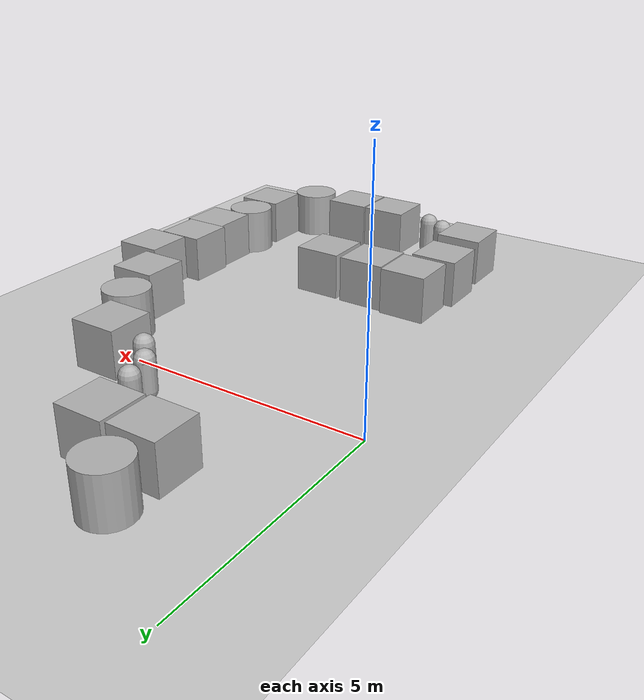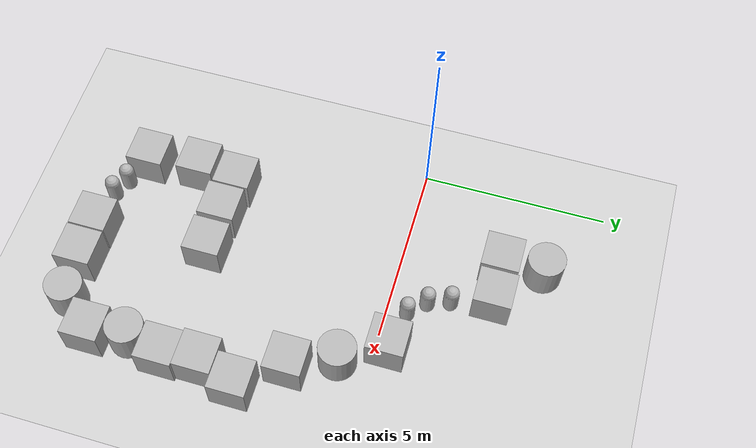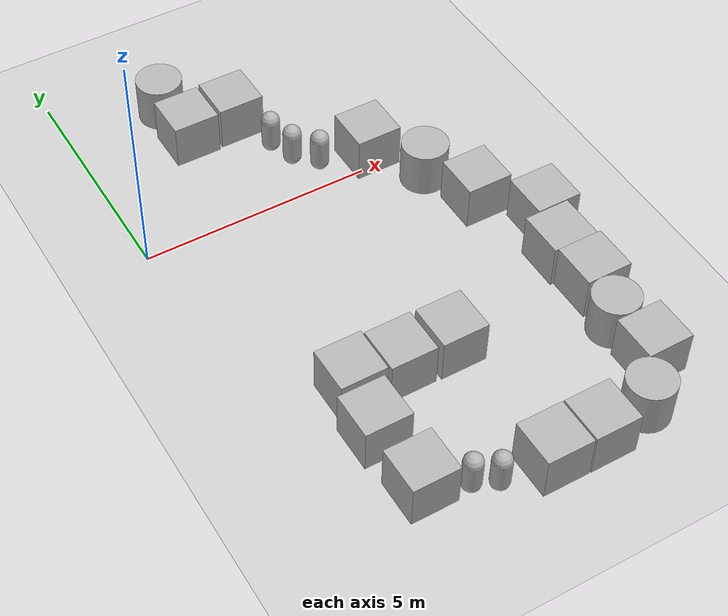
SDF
<sdf version='1.10'>
  <world name='empty'>
    <physics name='1ms' type='ignored'>
      <max_step_size>0.001</max_step_size>
      <real_time_factor>1</real_time_factor>
      <real_time_update_rate>1000</real_time_update_rate>
    </physics>
    <plugin name='gz::sim::systems::Physics' filename='gz-sim-physics-system'/>
    <plugin name='gz::sim::systems::UserCommands' filename='gz-sim-user-commands-system'/>
    <plugin name='gz::sim::systems::SceneBroadcaster' filename='gz-sim-scene-broadcaster-system'/>
    <plugin name='gz::sim::systems::Sensors' filename='gz-sim-sensors-system'>
      <render_engine>ogre2</render_engine>
    </plugin>
    <plugin name='gz::sim::systems::Contact' filename='gz-sim-contact-system'/>
    <gravity>0 0 -9.8000000000000007</gravity>
    <magnetic_field>5.5644999999999998e-06 2.2875799999999999e-05 -4.2388400000000002e-05</magnetic_field>
    <atmosphere type='adiabatic'/>
    <scene>
      <ambient>0.400000006 0.400000006 0.400000006 1</ambient>
      <background>0.699999988 0.699999988 0.699999988 1</background>
      <shadows>true</shadows>
    </scene>
    <model name='ground_plane'>
      <static>true</static>
      <link name='link'>
        <collision name='collision'>
          <geometry>
            <plane>
              <normal>0 0 1</normal>
              <size>100 100</size>
            </plane>
          </geometry>
          <surface>
            <friction>
              <ode/>
            </friction>
            <bounce/>
            <contact/>
          </surface>
        </collision>
        <visual name='visual'>
          <geometry>
            <plane>
              <normal>0 0 1</normal>
              <size>100 100</size>
            </plane>
          </geometry>
          <material>
            <ambient>0.800000012 0.800000012 0.800000012 1</ambient>
            <diffuse>0.800000012 0.800000012 0.800000012 1</diffuse>
            <specular>0.800000012 0.800000012 0.800000012 1</specular>
          </material>
        </visual>
        <pose>0 0 0 0 0 0</pose>
        <inertial>
          <pose>0 0 0 0 0 0</pose>
          <mass>1</mass>
          <inertia>
            <ixx>1</ixx>
            <ixy>0</ixy>
            <ixz>0</ixz>
            <iyy>1</iyy>
            <iyz>0</iyz>
            <izz>1</izz>
          </inertia>
        </inertial>
        <enable_wind>false</enable_wind>
      </link>
      <pose>0 0 0 0 0 0</pose>
      <self_collide>false</self_collide>
    </model>
    <model name='box'>
      <pose>1.8029219467110664 -4.9402323017846799 0.49999999970892495 1.9456243348768095e-21 -2.0287702973480091e-21 -7.5527752180039009e-22</pose>
      <link name='box_link'>
        <inertial>
          <inertia>
            <ixx>0.16666</ixx>
            <ixy>0</ixy>
            <ixz>0</ixz>
            <iyy>0.16666</iyy>
            <iyz>0</iyz>
            <izz>0.16666</izz>
          </inertia>
          <mass>1</mass>
          <pose>0 0 0 0 0 0</pose>
        </inertial>
        <collision name='box_collision'>
          <geometry>
            <box>
              <size>1 1 1</size>
            </box>
          </geometry>
          <surface>
            <friction>
              <ode/>
            </friction>
            <bounce/>
            <contact/>
          </surface>
        </collision>
        <visual name='box_visual'>
          <geometry>
            <box>
              <size>1 1 1</size>
            </box>
          </geometry>
          <material>
            <ambient>0.300000012 0.300000012 0.300000012 1</ambient>
            <diffuse>0.699999988 0.699999988 0.699999988 1</diffuse>
            <specular>1 1 1 1</specular>
          </material>
        </visual>
        <pose>0 0 0 0 0 0</pose>
        <enable_wind>false</enable_wind>
      </link>
      <static>false</static>
      <self_collide>false</self_collide>
    </model>
    <model name='cylinder'>
      <pose>2.1278173043812618 3.7029515542140965 0.49999943772199973 2.1066760115092856e-20 1.565504799259254e-20 -8.2773158789794774e-21</pose>
      <link name='cylinder_link'>
        <inertial>
          <inertia>
            <ixx>0.14580000000000001</ixx>
            <ixy>0</ixy>
            <ixz>0</ixz>
            <iyy>0.14580000000000001</iyy>
            <iyz>0</iyz>
            <izz>0.125</izz>
          </inertia>
          <mass>1</mass>
          <pose>0 0 0 0 0 0</pose>
        </inertial>
        <collision name='cylinder_collision'>
          <geometry>
            <cylinder>
              <radius>0.5</radius>
              <length>1</length>
            </cylinder>
          </geometry>
          <surface>
            <friction>
              <ode/>
            </friction>
            <bounce/>
            <contact/>
          </surface>
        </collision>
        <visual name='cylinder_visual'>
          <geometry>
            <cylinder>
              <radius>0.5</radius>
              <length>1</length>
            </cylinder>
          </geometry>
          <material>
            <ambient>0.300000012 0.300000012 0.300000012 1</ambient>
            <diffuse>0.699999988 0.699999988 0.699999988 1</diffuse>
            <specular>1 1 1 1</specular>
          </material>
        </visual>
        <pose>0 0 0 0 0 0</pose>
        <enable_wind>false</enable_wind>
      </link>
      <static>false</static>
      <self_collide>false</self_collide>
    </model>
    <model name='box_0'>
      <pose>3.2862999748237596 2.6066418007786942 0.49999999980497606 1.0048033485058014e-21 -2.4640853465547739e-21 -3.9210766489770922e-22</pose>
      <link name='box_link'>
        <inertial>
          <inertia>
            <ixx>0.16666</ixx>
            <ixy>0</ixy>
            <ixz>0</ixz>
            <iyy>0.16666</iyy>
            <iyz>0</iyz>
            <izz>0.16666</izz>
          </inertia>
          <mass>1</mass>
          <pose>0 0 0 0 0 0</pose>
        </inertial>
        <collision name='box_collision'>
          <geometry>
            <box>
              <size>1 1 1</size>
            </box>
          </geometry>
          <surface>
            <friction>
              <ode/>
            </friction>
            <bounce/>
            <contact/>
          </surface>
        </collision>
        <visual name='box_visual'>
          <geometry>
            <box>
              <size>1 1 1</size>
            </box>
          </geometry>
          <material>
            <ambient>0.300000012 0.300000012 0.300000012 1</ambient>
            <diffuse>0.699999988 0.699999988 0.699999988 1</diffuse>
            <specular>1 1 1 1</specular>
          </material>
        </visual>
        <pose>0 0 0 0 0 0</pose>
        <enable_wind>false</enable_wind>
      </link>
      <static>false</static>
      <self_collide>false</self_collide>
    </model>
    <model name='box_2'>
      <pose>5.3144298404714849 0.32666179257281813 0.49999999980497606 1.0048033485058014e-21 -2.4640853465547739e-21 -3.9210766489770922e-22</pose>
      <link name='box_link'>
        <inertial>
          <inertia>
            <ixx>0.16666</ixx>
            <ixy>0</ixy>
            <ixz>0</ixz>
            <iyy>0.16666</iyy>
            <iyz>0</iyz>
            <izz>0.16666</izz>
          </inertia>
          <mass>1</mass>
          <pose>0 0 0 0 0 0</pose>
        </inertial>
        <collision name='box_collision'>
          <geometry>
            <box>
              <size>1 1 1</size>
            </box>
          </geometry>
          <surface>
            <friction>
              <ode/>
            </friction>
            <bounce/>
            <contact/>
          </surface>
        </collision>
        <visual name='box_visual'>
          <geometry>
            <box>
              <size>1 1 1</size>
            </box>
          </geometry>
          <material>
            <ambient>0.300000012 0.300000012 0.300000012 1</ambient>
            <diffuse>0.699999988 0.699999988 0.699999988 1</diffuse>
            <specular>1 1 1 1</specular>
          </material>
        </visual>
        <pose>0 0 0 0 0 0</pose>
        <enable_wind>false</enable_wind>
      </link>
      <static>false</static>
      <self_collide>false</self_collide>
    </model>
    <model name='box_3'>
      <pose>2.837014502640967 -5.0088500809708263 0.49999999980497606 1.0048033485058014e-21 -2.4640853465547739e-21 -3.9210766489770922e-22</pose>
      <link name='box_link'>
        <inertial>
          <inertia>
            <ixx>0.16666</ixx>
            <ixy>0</ixy>
            <ixz>0</ixz>
            <iyy>0.16666</iyy>
            <iyz>0</iyz>
            <izz>0.16666</izz>
          </inertia>
          <mass>1</mass>
          <pose>0 0 0 0 0 0</pose>
        </inertial>
        <collision name='box_collision'>
          <geometry>
            <box>
              <size>1 1 1</size>
            </box>
          </geometry>
          <surface>
            <friction>
              <ode/>
            </friction>
            <bounce/>
            <contact/>
          </surface>
        </collision>
        <visual name='box_visual'>
          <geometry>
            <box>
              <size>1 1 1</size>
            </box>
          </geometry>
          <material>
            <ambient>0.300000012 0.300000012 0.300000012 1</ambient>
            <diffuse>0.699999988 0.699999988 0.699999988 1</diffuse>
            <specular>1 1 1 1</specular>
          </material>
        </visual>
        <pose>0 0 0 0 0 0</pose>
        <enable_wind>false</enable_wind>
      </link>
      <static>false</static>
      <self_collide>false</self_collide>
    </model>
    <model name='box_4'>
      <pose>3.9474809183531687 -5.0258722953265274 0.49999998529462536 3.7104125958135577e-09 -2.3067699219829278e-08 -3.0332183811339351e-07</pose>
      <link name='box_link'>
        <inertial>
          <inertia>
            <ixx>0.16666</ixx>
            <ixy>0</ixy>
            <ixz>0</ixz>
            <iyy>0.16666</iyy>
            <iyz>0</iyz>
            <izz>0.16666</izz>
          </inertia>
          <mass>1</mass>
          <pose>0 0 0 0 0 0</pose>
        </inertial>
        <collision name='box_collision'>
          <geometry>
            <box>
              <size>1 1 1</size>
            </box>
          </geometry>
          <surface>
            <friction>
              <ode/>
            </friction>
            <bounce/>
            <contact/>
          </surface>
        </collision>
        <visual name='box_visual'>
          <geometry>
            <box>
              <size>1 1 1</size>
            </box>
          </geometry>
          <material>
            <ambient>0.300000012 0.300000012 0.300000012 1</ambient>
            <diffuse>0.699999988 0.699999988 0.699999988 1</diffuse>
            <specular>1 1 1 1</specular>
          </material>
        </visual>
        <pose>0 0 0 0 0 0</pose>
        <enable_wind>false</enable_wind>
      </link>
      <static>false</static>
      <self_collide>false</self_collide>
    </model>
    <model name='box_7'>
      <pose>6.5231540357217348 -1.967623446308266 0.49999999980497606 1.0048033485058014e-21 -2.4640853465547739e-21 -3.9210766489770922e-22</pose>
      <link name='box_link'>
        <inertial>
          <inertia>
            <ixx>0.16666</ixx>
            <ixy>0</ixy>
            <ixz>0</ixz>
            <iyy>0.16666</iyy>
            <iyz>0</iyz>
            <izz>0.16666</izz>
          </inertia>
          <mass>1</mass>
          <pose>0 0 0 0 0 0</pose>
        </inertial>
        <collision name='box_collision'>
          <geometry>
            <box>
              <size>1 1 1</size>
            </box>
          </geometry>
          <surface>
            <friction>
              <ode/>
            </friction>
            <bounce/>
            <contact/>
          </surface>
        </collision>
        <visual name='box_visual'>
          <geometry>
            <box>
              <size>1 1 1</size>
            </box>
          </geometry>
          <material>
            <ambient>0.300000012 0.300000012 0.300000012 1</ambient>
            <diffuse>0.699999988 0.699999988 0.699999988 1</diffuse>
            <specular>1 1 1 1</specular>
          </material>
        </visual>
        <pose>0 0 0 0 0 0</pose>
        <enable_wind>false</enable_wind>
      </link>
      <static>false</static>
      <self_collide>false</self_collide>
    </model>
    <model name='box_8'>
      <pose>7.4158802936807593 -3.0975309045415642 0.49999999980497606 1.0048033485058014e-21 -2.4640853465547739e-21 -3.9210766489770922e-22</pose>
      <link name='box_link'>
        <inertial>
          <inertia>
            <ixx>0.16666</ixx>
            <ixy>0</ixy>
            <ixz>0</ixz>
            <iyy>0.16666</iyy>
            <iyz>0</iyz>
            <izz>0.16666</izz>
          </inertia>
          <mass>1</mass>
          <pose>0 0 0 0 0 0</pose>
        </inertial>
        <collision name='box_collision'>
          <geometry>
            <box>
              <size>1 1 1</size>
            </box>
          </geometry>
          <surface>
            <friction>
              <ode/>
            </friction>
            <bounce/>
            <contact/>
          </surface>
        </collision>
        <visual name='box_visual'>
          <geometry>
            <box>
              <size>1 1 1</size>
            </box>
          </geometry>
          <material>
            <ambient>0.300000012 0.300000012 0.300000012 1</ambient>
            <diffuse>0.699999988 0.699999988 0.699999988 1</diffuse>
            <specular>1 1 1 1</specular>
          </material>
        </visual>
        <pose>0 0 0 0 0 0</pose>
        <enable_wind>false</enable_wind>
      </link>
      <static>false</static>
      <self_collide>false</self_collide>
    </model>
    <model name='box_9'>
      <pose>7.083578917499171 -4.1148498478956697 0.4999999901998512 -5.0054462870855815e-09 6.7667792938227688e-13 -1.6027558188792147e-06</pose>
      <link name='box_link'>
        <inertial>
          <inertia>
            <ixx>0.16666</ixx>
            <ixy>0</ixy>
            <ixz>0</ixz>
            <iyy>0.16666</iyy>
            <iyz>0</iyz>
            <izz>0.16666</izz>
          </inertia>
          <mass>1</mass>
          <pose>0 0 0 0 0 0</pose>
        </inertial>
        <collision name='box_collision'>
          <geometry>
            <box>
              <size>1 1 1</size>
            </box>
          </geometry>
          <surface>
            <friction>
              <ode/>
            </friction>
            <bounce/>
            <contact/>
          </surface>
        </collision>
        <visual name='box_visual'>
          <geometry>
            <box>
              <size>1 1 1</size>
            </box>
          </geometry>
          <material>
            <ambient>0.300000012 0.300000012 0.300000012 1</ambient>
            <diffuse>0.699999988 0.699999988 0.699999988 1</diffuse>
            <specular>1 1 1 1</specular>
          </material>
        </visual>
        <pose>0 0 0 0 0 0</pose>
        <enable_wind>false</enable_wind>
      </link>
      <static>false</static>
      <self_collide>false</self_collide>
    </model>
    <model name='box_10'>
      <pose>7.1576687280783151 -5.1148497796605188 0.49999999019985342 -5.0212382141826541e-09 6.6009256246893956e-13 -1.5803645043460538e-06</pose>
      <link name='box_link'>
        <inertial>
          <inertia>
            <ixx>0.16666</ixx>
            <ixy>0</ixy>
            <ixz>0</ixz>
            <iyy>0.16666</iyy>
            <iyz>0</iyz>
            <izz>0.16666</izz>
          </inertia>
          <mass>1</mass>
          <pose>0 0 0 0 0 0</pose>
        </inertial>
        <collision name='box_collision'>
          <geometry>
            <box>
              <size>1 1 1</size>
            </box>
          </geometry>
          <surface>
            <friction>
              <ode/>
            </friction>
            <bounce/>
            <contact/>
          </surface>
        </collision>
        <visual name='box_visual'>
          <geometry>
            <box>
              <size>1 1 1</size>
            </box>
          </geometry>
          <material>
            <ambient>0.300000012 0.300000012 0.300000012 1</ambient>
            <diffuse>0.699999988 0.699999988 0.699999988 1</diffuse>
            <specular>1 1 1 1</specular>
          </material>
        </visual>
        <pose>0 0 0 0 0 0</pose>
        <enable_wind>false</enable_wind>
      </link>
      <static>false</static>
      <self_collide>false</self_collide>
    </model>
    <model name='box_12'>
      <pose>7.0693667116471071 -7.120849661032981 0.49999902609787999 3.1407788921535716e-09 1.2773885058184568e-06 0.0023711304066143051</pose>
      <link name='box_link'>
        <inertial>
          <inertia>
            <ixx>0.16666</ixx>
            <ixy>0</ixy>
            <ixz>0</ixz>
            <iyy>0.16666</iyy>
            <iyz>0</iyz>
            <izz>0.16666</izz>
          </inertia>
          <mass>1</mass>
          <pose>0 0 0 0 0 0</pose>
        </inertial>
        <collision name='box_collision'>
          <geometry>
            <box>
              <size>1 1 1</size>
            </box>
          </geometry>
          <surface>
            <friction>
              <ode/>
            </friction>
            <bounce/>
            <contact/>
          </surface>
        </collision>
        <visual name='box_visual'>
          <geometry>
            <box>
              <size>1 1 1</size>
            </box>
          </geometry>
          <material>
            <ambient>0.300000012 0.300000012 0.300000012 1</ambient>
            <diffuse>0.699999988 0.699999988 0.699999988 1</diffuse>
            <specular>1 1 1 1</specular>
          </material>
        </visual>
        <pose>0 0 0 0 0 0</pose>
        <enable_wind>false</enable_wind>
      </link>
      <static>false</static>
      <self_collide>false</self_collide>
    </model>
    <model name='box_14'>
      <pose>5.1242039913273256 -8.1461779064023929 0.49999999019961472 6.999815750043932e-13 -4.3492220174556304e-09 -2.2626298584421222e-06</pose>
      <link name='box_link'>
        <inertial>
          <inertia>
            <ixx>0.16666</ixx>
            <ixy>0</ixy>
            <ixz>0</ixz>
            <iyy>0.16666</iyy>
            <iyz>0</iyz>
            <izz>0.16666</izz>
          </inertia>
          <mass>1</mass>
          <pose>0 0 0 0 0 0</pose>
        </inertial>
        <collision name='box_collision'>
          <geometry>
            <box>
              <size>1 1 1</size>
            </box>
          </geometry>
          <surface>
            <friction>
              <ode/>
            </friction>
            <bounce/>
            <contact/>
          </surface>
        </collision>
        <visual name='box_visual'>
          <geometry>
            <box>
              <size>1 1 1</size>
            </box>
          </geometry>
          <material>
            <ambient>0.300000012 0.300000012 0.300000012 1</ambient>
            <diffuse>0.699999988 0.699999988 0.699999988 1</diffuse>
            <specular>1 1 1 1</specular>
          </material>
        </visual>
        <pose>0 0 0 0 0 0</pose>
        <enable_wind>false</enable_wind>
      </link>
      <static>false</static>
      <self_collide>false</self_collide>
    </model>
    <model name='box_15'>
      <pose>4.0904389897101998 -8.1420347813360383 0.49999999980497606 1.0048033485058014e-21 -2.4640853465547739e-21 -3.9210766489770922e-22</pose>
      <link name='box_link'>
        <inertial>
          <inertia>
            <ixx>0.16666</ixx>
            <ixy>0</ixy>
            <ixz>0</ixz>
            <iyy>0.16666</iyy>
            <iyz>0</iyz>
            <izz>0.16666</izz>
          </inertia>
          <mass>1</mass>
          <pose>0 0 0 0 0 0</pose>
        </inertial>
        <collision name='box_collision'>
          <geometry>
            <box>
              <size>1 1 1</size>
            </box>
          </geometry>
          <surface>
            <friction>
              <ode/>
            </friction>
            <bounce/>
            <contact/>
          </surface>
        </collision>
        <visual name='box_visual'>
          <geometry>
            <box>
              <size>1 1 1</size>
            </box>
          </geometry>
          <material>
            <ambient>0.300000012 0.300000012 0.300000012 1</ambient>
            <diffuse>0.699999988 0.699999988 0.699999988 1</diffuse>
            <specular>1 1 1 1</specular>
          </material>
        </visual>
        <pose>0 0 0 0 0 0</pose>
        <enable_wind>false</enable_wind>
      </link>
      <static>false</static>
      <self_collide>false</self_collide>
    </model>
    <model name='box_16'>
      <pose>2.2159928085678793 2.5692487041955907 0.49999999980497606 1.0048033485058014e-21 -2.4640853465547739e-21 -3.9210766489770922e-22</pose>
      <link name='box_link'>
        <inertial>
          <inertia>
            <ixx>0.16666</ixx>
            <ixy>0</ixy>
            <ixz>0</ixz>
            <iyy>0.16666</iyy>
            <iyz>0</iyz>
            <izz>0.16666</izz>
          </inertia>
          <mass>1</mass>
          <pose>0 0 0 0 0 0</pose>
        </inertial>
        <collision name='box_collision'>
          <geometry>
            <box>
              <size>1 1 1</size>
            </box>
          </geometry>
          <surface>
            <friction>
              <ode/>
            </friction>
            <bounce/>
            <contact/>
          </surface>
        </collision>
        <visual name='box_visual'>
          <geometry>
            <box>
              <size>1 1 1</size>
            </box>
          </geometry>
          <material>
            <ambient>0.300000012 0.300000012 0.300000012 1</ambient>
            <diffuse>0.699999988 0.699999988 0.699999988 1</diffuse>
            <specular>1 1 1 1</specular>
          </material>
        </visual>
        <pose>0 0 0 0 0 0</pose>
        <enable_wind>false</enable_wind>
      </link>
      <static>false</static>
      <self_collide>false</self_collide>
    </model>
    <model name='cylinder_0'>
      <pose>6.2974698751317089 -8.0410157788607393 0.49999930807650855 -7.5150494219024244e-08 3.0600559907714228e-08 -0.0031645977073171423</pose>
      <link name='cylinder_link'>
        <inertial>
          <inertia>
            <ixx>0.14580000000000001</ixx>
            <ixy>0</ixy>
            <ixz>0</ixz>
            <iyy>0.14580000000000001</iyy>
            <iyz>0</iyz>
            <izz>0.125</izz>
          </inertia>
          <mass>1</mass>
          <pose>0 0 0 0 0 0</pose>
        </inertial>
        <collision name='cylinder_collision'>
          <geometry>
            <cylinder>
              <radius>0.5</radius>
              <length>1</length>
            </cylinder>
          </geometry>
          <surface>
            <friction>
              <ode/>
            </friction>
            <bounce/>
            <contact/>
          </surface>
        </collision>
        <visual name='cylinder_visual'>
          <geometry>
            <cylinder>
              <radius>0.5</radius>
              <length>1</length>
            </cylinder>
          </geometry>
          <material>
            <ambient>0.300000012 0.300000012 0.300000012 1</ambient>
            <diffuse>0.699999988 0.699999988 0.699999988 1</diffuse>
            <specular>1 1 1 1</specular>
          </material>
        </visual>
        <pose>0 0 0 0 0 0</pose>
        <enable_wind>false</enable_wind>
      </link>
      <static>false</static>
      <self_collide>false</self_collide>
    </model>
    <model name='cylinder_1'>
      <pose>6.9408118787662314 -6.1148487614774121 0.49999943241961042 3.0089181343858564e-08 -8.1002048025751635e-10 1.6355637862188183e-07</pose>
      <link name='cylinder_link'>
        <inertial>
          <inertia>
            <ixx>0.14580000000000001</ixx>
            <ixy>0</ixy>
            <ixz>0</ixz>
            <iyy>0.14580000000000001</iyy>
            <iyz>0</iyz>
            <izz>0.125</izz>
          </inertia>
          <mass>1</mass>
          <pose>0 0 0 0 0 0</pose>
        </inertial>
        <collision name='cylinder_collision'>
          <geometry>
            <cylinder>
              <radius>0.5</radius>
              <length>1</length>
            </cylinder>
          </geometry>
          <surface>
            <friction>
              <ode/>
            </friction>
            <bounce/>
            <contact/>
          </surface>
        </collision>
        <visual name='cylinder_visual'>
          <geometry>
            <cylinder>
              <radius>0.5</radius>
              <length>1</length>
            </cylinder>
          </geometry>
          <material>
            <ambient>0.300000012 0.300000012 0.300000012 1</ambient>
            <diffuse>0.699999988 0.699999988 0.699999988 1</diffuse>
            <specular>1 1 1 1</specular>
          </material>
        </visual>
        <pose>0 0 0 0 0 0</pose>
        <enable_wind>false</enable_wind>
      </link>
      <static>false</static>
      <self_collide>false</self_collide>
    </model>
    <model name='box_5'>
      <pose>1.6543252769880867 -6.0471364654690039 0.49999999990199806 6.2287739151293738e-22 9.3279666454713669e-22 -3.6315533669320137e-22</pose>
      <link name='box_link'>
        <inertial>
          <inertia>
            <ixx>0.16666</ixx>
            <ixy>0</ixy>
            <ixz>0</ixz>
            <iyy>0.16666</iyy>
            <iyz>0</iyz>
            <izz>0.16666</izz>
          </inertia>
          <mass>1</mass>
          <pose>0 0 0 0 0 0</pose>
        </inertial>
        <collision name='box_collision'>
          <geometry>
            <box>
              <size>1 1 1</size>
            </box>
          </geometry>
          <surface>
            <friction>
              <ode/>
            </friction>
            <bounce/>
            <contact/>
          </surface>
        </collision>
        <visual name='box_visual'>
          <geometry>
            <box>
              <size>1 1 1</size>
            </box>
          </geometry>
          <material>
            <ambient>0.300000012 0.300000012 0.300000012 1</ambient>
            <diffuse>0.699999988 0.699999988 0.699999988 1</diffuse>
            <specular>1 1 1 1</specular>
          </material>
        </visual>
        <pose>0 0 0 0 0 0</pose>
        <enable_wind>false</enable_wind>
      </link>
      <static>false</static>
      <self_collide>false</self_collide>
    </model>
    <model name='box_11'>
      <pose>1.7551158731691809 -7.4556031677542656 0.49999999068689022 -2.9710687562361425e-09 -9.9436750194873741e-10 0.0010335454463422217</pose>
      <link name='box_link'>
        <inertial>
          <inertia>
            <ixx>0.16666</ixx>
            <ixy>0</ixy>
            <ixz>0</ixz>
            <iyy>0.16666</iyy>
            <iyz>0</iyz>
            <izz>0.16666</izz>
          </inertia>
          <mass>1</mass>
          <pose>0 0 0 0 0 0</pose>
        </inertial>
        <collision name='box_collision'>
          <geometry>
            <box>
              <size>1 1 1</size>
            </box>
          </geometry>
          <surface>
            <friction>
              <ode/>
            </friction>
            <bounce/>
            <contact/>
          </surface>
        </collision>
        <visual name='box_visual'>
          <geometry>
            <box>
              <size>1 1 1</size>
            </box>
          </geometry>
          <material>
            <ambient>0.300000012 0.300000012 0.300000012 1</ambient>
            <diffuse>0.699999988 0.699999988 0.699999988 1</diffuse>
            <specular>1 1 1 1</specular>
          </material>
        </visual>
        <pose>0 0 0 0 0 0</pose>
        <enable_wind>false</enable_wind>
      </link>
      <static>false</static>
      <self_collide>false</self_collide>
    </model>
    <model name='capsule'>
      <pose>3.0387576218623327 -8.0604464002058993 0.499999999902001 0 0 0</pose>
      <link name='capsule_link'>
        <inertial>
          <inertia>
            <ixx>0.074153999999999998</ixx>
            <ixy>0</ixy>
            <ixz>0</ixz>
            <iyy>0.074153999999999998</iyy>
            <iyz>0</iyz>
            <izz>0.018769000000000001</izz>
          </inertia>
          <mass>1</mass>
          <pose>0 0 0 0 0 0</pose>
        </inertial>
        <collision name='capsule_collision'>
          <geometry>
            <capsule>
              <radius>0.20000000000000001</radius>
              <length>0.59999999999999998</length>
            </capsule>
          </geometry>
          <surface>
            <friction>
              <ode/>
            </friction>
            <bounce/>
            <contact/>
          </surface>
        </collision>
        <visual name='capsule_visual'>
          <geometry>
            <capsule>
              <radius>0.20000000000000001</radius>
              <length>0.59999999999999998</length>
            </capsule>
          </geometry>
          <material>
            <ambient>0.300000012 0.300000012 0.300000012 1</ambient>
            <diffuse>0.699999988 0.699999988 0.699999988 1</diffuse>
            <specular>1 1 1 1</specular>
          </material>
        </visual>
        <pose>0 0 0 0 0 0</pose>
        <enable_wind>false</enable_wind>
      </link>
      <static>false</static>
      <self_collide>false</self_collide>
    </model>
    <model name='capsule_0'>
      <pose>2.5758053934813674 -7.8373864243640678 0.499999999902001 0 0 0</pose>
      <link name='capsule_link'>
        <inertial>
          <inertia>
            <ixx>0.074153999999999998</ixx>
            <ixy>0</ixy>
            <ixz>0</ixz>
            <iyy>0.074153999999999998</iyy>
            <iyz>0</iyz>
            <izz>0.018769000000000001</izz>
          </inertia>
          <mass>1</mass>
          <pose>0 0 0 0 0 0</pose>
        </inertial>
        <collision name='capsule_collision'>
          <geometry>
            <capsule>
              <radius>0.20000000000000001</radius>
              <length>0.59999999999999998</length>
            </capsule>
          </geometry>
          <surface>
            <friction>
              <ode/>
            </friction>
            <bounce/>
            <contact/>
          </surface>
        </collision>
        <visual name='capsule_visual'>
          <geometry>
            <capsule>
              <radius>0.20000000000000001</radius>
              <length>0.59999999999999998</length>
            </capsule>
          </geometry>
          <material>
            <ambient>0.300000012 0.300000012 0.300000012 1</ambient>
            <diffuse>0.699999988 0.699999988 0.699999988 1</diffuse>
            <specular>1 1 1 1</specular>
          </material>
        </visual>
        <pose>0 0 0 0 0 0</pose>
        <enable_wind>false</enable_wind>
      </link>
      <static>false</static>
      <self_collide>false</self_collide>
    </model>
    <model name='cylinder_2'>
      <pose>6.0187234254274005 -0.80601080308189488 0.49999942638036005 2.5350310332025989e-19 4.2175204194865701e-20 2.778626139206021e-21</pose>
      <link name='cylinder_link'>
        <inertial>
          <inertia>
            <ixx>0.14580000000000001</ixx>
            <ixy>0</ixy>
            <ixz>0</ixz>
            <iyy>0.14580000000000001</iyy>
            <iyz>0</iyz>
            <izz>0.125</izz>
          </inertia>
          <mass>1</mass>
          <pose>0 0 0 0 0 0</pose>
        </inertial>
        <collision name='cylinder_collision'>
          <geometry>
            <cylinder>
              <radius>0.5</radius>
              <length>1</length>
            </cylinder>
          </geometry>
          <surface>
            <friction>
              <ode/>
            </friction>
            <bounce/>
            <contact/>
          </surface>
        </collision>
        <visual name='cylinder_visual'>
          <geometry>
            <cylinder>
              <radius>0.5</radius>
              <length>1</length>
            </cylinder>
          </geometry>
          <material>
            <ambient>0.300000012 0.300000012 0.300000012 1</ambient>
            <diffuse>0.699999988 0.699999988 0.699999988 1</diffuse>
            <specular>1 1 1 1</specular>
          </material>
        </visual>
        <pose>0 0 0 0 0 0</pose>
        <enable_wind>false</enable_wind>
      </link>
      <static>false</static>
      <self_collide>false</self_collide>
    </model>
    <model name='capsule_2'>
      <pose>3.6781785280247785 1.5636957353338308 0.499999999902001 0 0 0</pose>
      <link name='capsule_link'>
        <inertial>
          <inertia>
            <ixx>0.074153999999999998</ixx>
            <ixy>0</ixy>
            <ixz>0</ixz>
            <iyy>0.074153999999999998</iyy>
            <iyz>0</iyz>
            <izz>0.018769000000000001</izz>
          </inertia>
          <mass>1</mass>
          <pose>0 0 0 0 0 0</pose>
        </inertial>
        <collision name='capsule_collision'>
          <geometry>
            <capsule>
              <radius>0.20000000000000001</radius>
              <length>0.59999999999999998</length>
            </capsule>
          </geometry>
          <surface>
            <friction>
              <ode/>
            </friction>
            <bounce/>
            <contact/>
          </surface>
        </collision>
        <visual name='capsule_visual'>
          <geometry>
            <capsule>
              <radius>0.20000000000000001</radius>
              <length>0.59999999999999998</length>
            </capsule>
          </geometry>
          <material>
            <ambient>0.300000012 0.300000012 0.300000012 1</ambient>
            <diffuse>0.699999988 0.699999988 0.699999988 1</diffuse>
            <specular>1 1 1 1</specular>
          </material>
        </visual>
        <pose>0 0 0 0 0 0</pose>
        <enable_wind>false</enable_wind>
      </link>
      <static>false</static>
      <self_collide>false</self_collide>
    </model>
    <model name='capsule_1'>
      <pose>3.8726846513219506 0.98768867329479437 0.499999999902001 0 0 0</pose>
      <link name='capsule_link'>
        <inertial>
          <inertia>
            <ixx>0.074153999999999998</ixx>
            <ixy>0</ixy>
            <ixz>0</ixz>
            <iyy>0.074153999999999998</iyy>
            <iyz>0</iyz>
            <izz>0.018769000000000001</izz>
          </inertia>
          <mass>1</mass>
          <pose>0 0 0 0 0 0</pose>
        </inertial>
        <collision name='capsule_collision'>
          <geometry>
            <capsule>
              <radius>0.20000000000000001</radius>
              <length>0.59999999999999998</length>
            </capsule>
          </geometry>
          <surface>
            <friction>
              <ode/>
            </friction>
            <bounce/>
            <contact/>
          </surface>
        </collision>
        <visual name='capsule_visual'>
          <geometry>
            <capsule>
              <radius>0.20000000000000001</radius>
              <length>0.59999999999999998</length>
            </capsule>
          </geometry>
          <material>
            <ambient>0.300000012 0.300000012 0.300000012 1</ambient>
            <diffuse>0.699999988 0.699999988 0.699999988 1</diffuse>
            <specular>1 1 1 1</specular>
          </material>
        </visual>
        <pose>0 0 0 0 0 0</pose>
        <enable_wind>false</enable_wind>
      </link>
      <static>false</static>
      <self_collide>false</self_collide>
    </model>
    <model name='capsule_3'>
      <pose>4.2929854610729743 0.55595186529024532 0.499999999902001 0 0 0</pose>
      <link name='capsule_link'>
        <inertial>
          <inertia>
            <ixx>0.074153999999999998</ixx>
            <ixy>0</ixy>
            <ixz>0</ixz>
            <iyy>0.074153999999999998</iyy>
            <iyz>0</iyz>
            <izz>0.018769000000000001</izz>
          </inertia>
          <mass>1</mass>
          <pose>0 0 0 0 0 0</pose>
        </inertial>
        <collision name='capsule_collision'>
          <geometry>
            <capsule>
              <radius>0.20000000000000001</radius>
              <length>0.59999999999999998</length>
            </capsule>
          </geometry>
          <surface>
            <friction>
              <ode/>
            </friction>
            <bounce/>
            <contact/>
          </surface>
        </collision>
        <visual name='capsule_visual'>
          <geometry>
            <capsule>
              <radius>0.20000000000000001</radius>
              <length>0.59999999999999998</length>
            </capsule>
          </geometry>
          <material>
            <ambient>0.300000012 0.300000012 0.300000012 1</ambient>
            <diffuse>0.699999988 0.699999988 0.699999988 1</diffuse>
            <specular>1 1 1 1</specular>
          </material>
        </visual>
        <pose>0 0 0 0 0 0</pose>
        <enable_wind>false</enable_wind>
      </link>
      <static>false</static>
      <self_collide>false</self_collide>
    </model>
    <light name='sun' type='directional'>
      <pose>0 0 10 0 0 0</pose>
      <cast_shadows>true</cast_shadows>
      <intensity>1</intensity>
      <direction>-0.5 0.10000000000000001 -0.90000000000000002</direction>
      <diffuse>0.800000012 0.800000012 0.800000012 1</diffuse>
      <specular>0.200000003 0.200000003 0.200000003 1</specular>
      <attenuation>
        <range>1000</range>
        <linear>0.01</linear>
        <constant>0.90000000000000002</constant>
        <quadratic>0.001</quadratic>
      </attenuation>
      <spot>
        <inner_angle>0</inner_angle>
        <outer_angle>0</outer_angle>
        <falloff>0</falloff>
      </spot>
    </light>
  </world>
</sdf>
